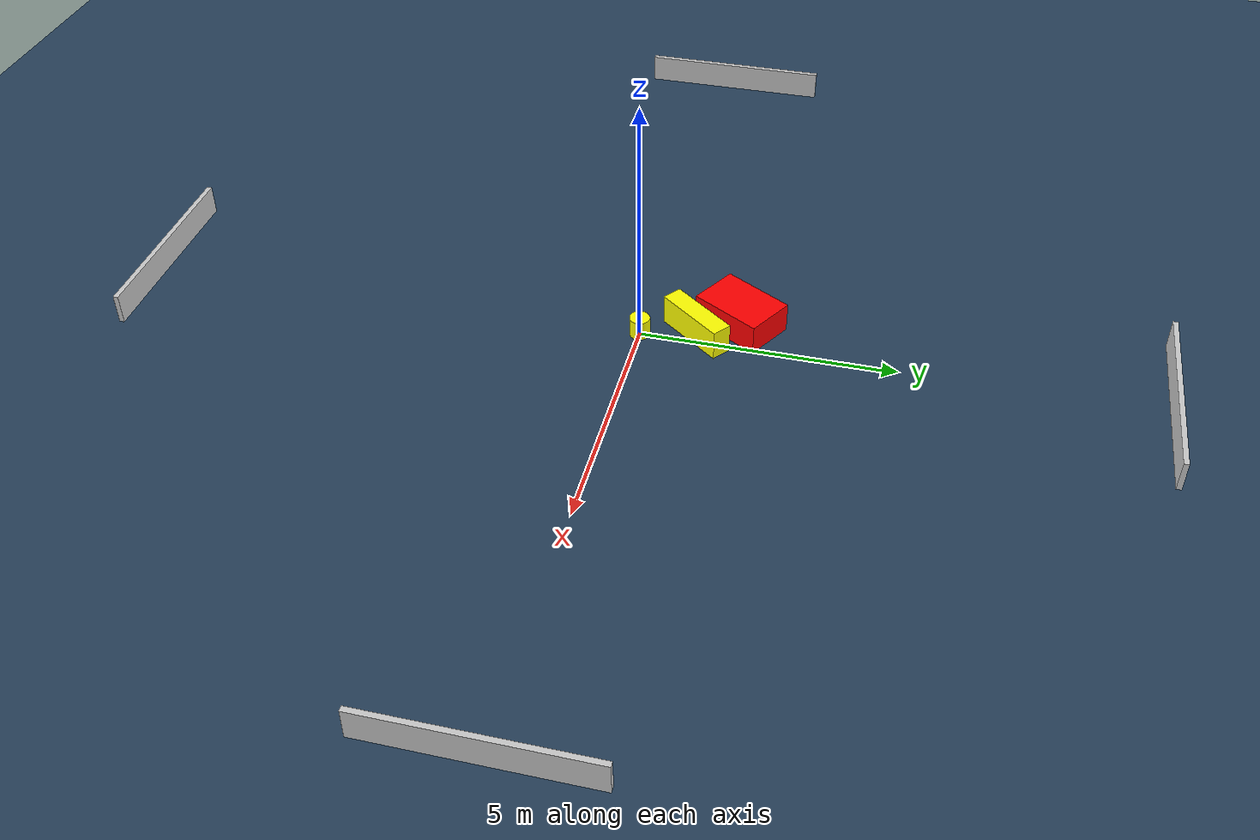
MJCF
<?xml version="1.0" ?>
<mujoco model="generated_environment">
  <option timestep="0.01" integrator="RK4" cone="elliptic"/>
  <default>
    <geom density="1"/>
  </default>
  <asset>
    <texture builtin="gradient" height="3072" name="skybox" rgb1="0.3 0.5 0.7" rgb2="0 0 0" type="skybox" width="512"/>
    <texture builtin="checker" height="300" name="groundplane" rgb1="0.2 0.3 0.4" rgb2="0.1 0.2 0.3" type="2d" width="300"/>
    <material name="groundplane" reflectance="0.2" texrepeat="5 5" texture="groundplane"/>
  </asset>
  <worldbody>
    <light dir="0 0 -1" directional="true" pos="0 0 1.5"/>
    <geom condim="3" friction="0.5 0.005 0.001" material="groundplane" name="floor" pos="0 0 0" size="0 0 0.05" type="plane"/>
    <body name="walls">
      <geom name="wall_1" condim="4" pos="-10.0 0.0 0.3" rgba="0.800000011920929 0.800000011920929 0.800000011920929 1.0" size="0.05 2.0 0.3" type="box"/>
      <geom name="wall_2" condim="4" pos="10.0 0.0 0.3" rgba="0.800000011920929 0.800000011920929 0.800000011920929 1.0" size="0.05 2.0 0.3" type="box"/>
      <geom name="wall_3" condim="4" pos="0.0 -10.0 0.3" rgba="0.800000011920929 0.800000011920929 0.800000011920929 1.0" size="2.0 0.05 0.3" type="box"/>
      <geom name="wall_4" condim="4" pos="0.0 10.0 0.3" rgba="0.800000011920929 0.800000011920929 0.800000011920929 1.0" size="2.0 0.05 0.3" type="box"/>
    </body>
    <body name="robot">
      <joint name="joint_x" type="slide" pos="0 0 0" axis="1 0 0"/>
      <joint name="joint_y" type="slide" pos="0 0 0" axis="0 1 0"/>
      <geom name="robot" type="cylinder" pos="0.0 0.0 0.2" size="0.2 0.2 0.0" mass="5.0" friction="1.0 0.005 0.0001" condim="4" rgba="1.0 1.0 0.0 1.0"/>
    </body>
    <body name="obstacle_1_movable">
      <geom name="obstacle_1_movable" condim="4" pos="-0.20134349955378644 1.0740838957767838 0.3" euler="0 0 232.13752764039077" friction="0.0 0.005 0.001" rgba="1.0 1.0 0.0 1.0" size="0.7427492585109916 0.20056154346699895 0.3" type="box" mass="0.1"/>
      <joint type="free"/>
    </body>
    <body name="obstacle_2_static">
      <geom name="obstacle_2_static" condim="4" pos="-0.7293672754146049 1.8574321338043065 0.3" euler="0 0 149.59953793100567" friction="0.0 0.005 0.001" rgba="1.0 0.0 0.0 1.0" size="0.5063527336843663 0.7357816893306732 0.3" type="box"/>
    </body>
  </worldbody>
  <actuator>
    <motor name="actuator_x" joint="joint_x" gear="1" ctrlrange="-1 1"/>
    <motor name="actuator_y" joint="joint_y" gear="1" ctrlrange="-1 1"/>
  </actuator>
</mujoco>
